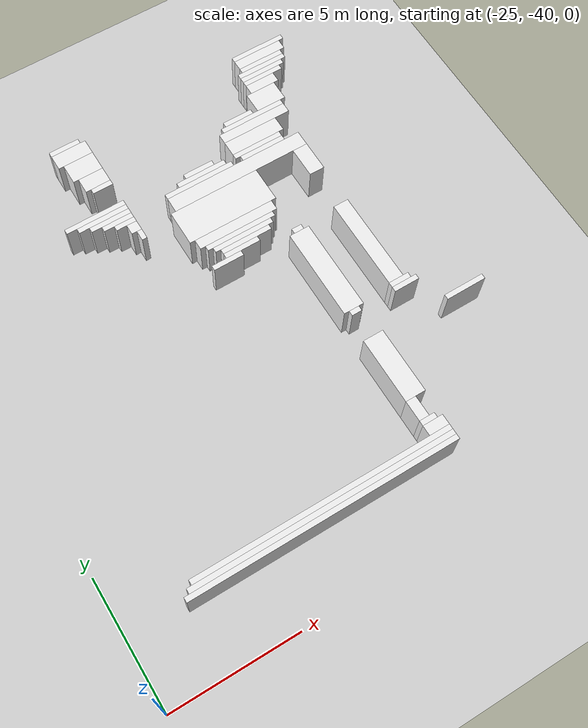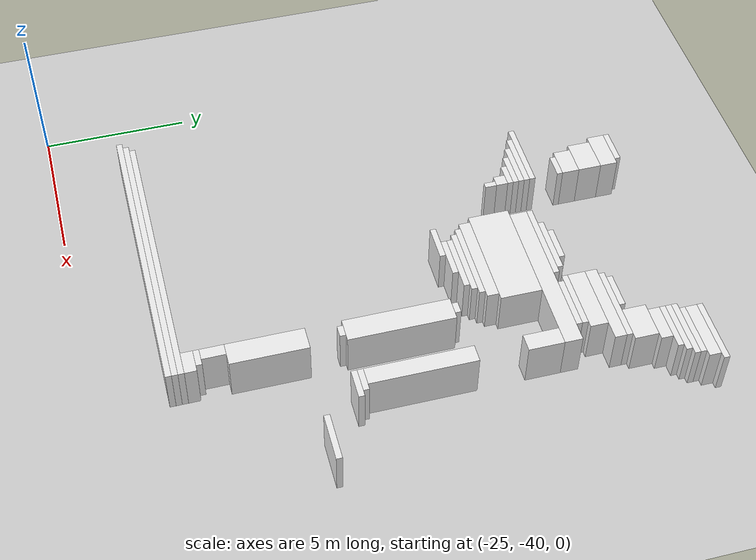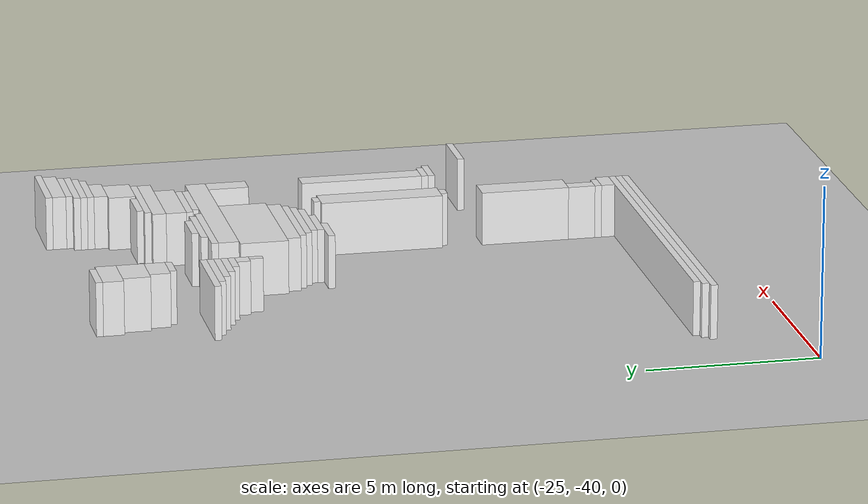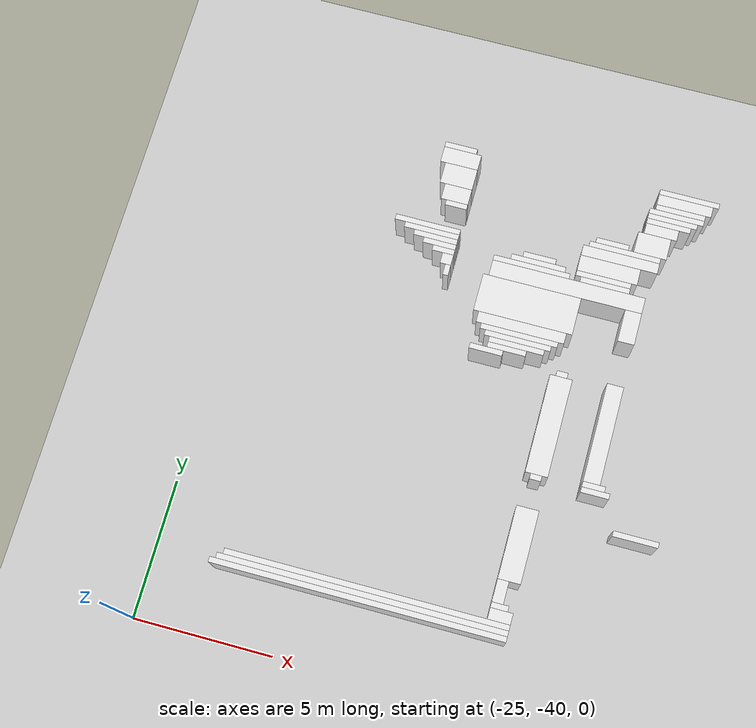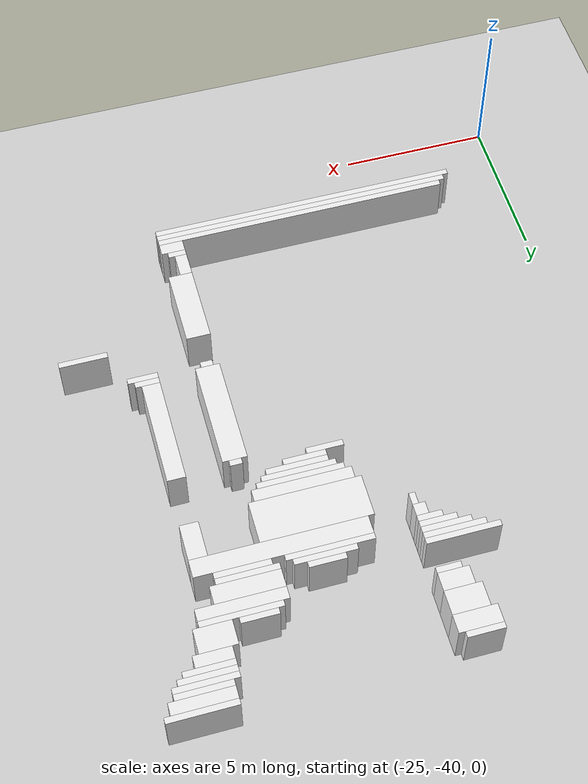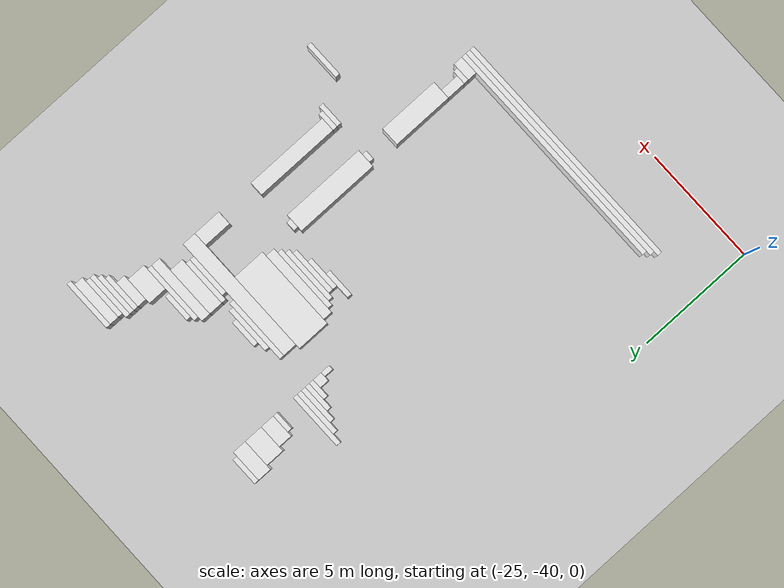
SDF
<sdf version="1.7">
 <world name="default">
  <model name="ground_plane">
   <static>1</static>
   <link name="link">
    <collision name="collision">
     <geometry><plane><normal>0 0 1</normal><size>120 120</size></plane></geometry>
    </collision>
    <visual name="visual">
     <geometry><plane><normal>0 0 1</normal><size>120 120</size></plane></geometry>
     <material>
      <script><uri>file://media/materials/scripts/gazebo.material</uri><name>Gazebo/Grey</name></script>
     </material>
    </visual>
   </link>
  </model>
  <model name="random_complex_02_model">
   <static>1</static>
   <link name="obs_2791">
    <pose>-9.9000 -20.5000 0.8000 0 0 0</pose>
    <collision name="obs_2791_col"><geometry><box><size>2.2000 0.2000 1.6000</size></box></geometry></collision>
    <visual name="obs_2791_vis">
     <geometry><box><size>2.2000 0.2000 1.6000</size></box></geometry>
     <material>
      <script><uri>file://media/materials/scripts/gazebo.material</uri><name>Gazebo/White</name></script>
     </material>
    </visual>
   </link>
   <link name="obs_2797">
    <pose>-18.4000 -20.7000 0.8000 0 0 0</pose>
    <collision name="obs_2797_col"><geometry><box><size>1.2000 0.2000 1.6000</size></box></geometry></collision>
    <visual name="obs_2797_vis">
     <geometry><box><size>1.2000 0.2000 1.6000</size></box></geometry>
     <material>
      <script><uri>file://media/materials/scripts/gazebo.material</uri><name>Gazebo/White</name></script>
     </material>
    </visual>
   </link>
   <link name="obs_2801">
    <pose>-10.0000 -20.8000 0.8000 0 0 0</pose>
    <collision name="obs_2801_col"><geometry><box><size>2.0000 0.4000 1.6000</size></box></geometry></collision>
    <visual name="obs_2801_vis">
     <geometry><box><size>2.0000 0.4000 1.6000</size></box></geometry>
     <material>
      <script><uri>file://media/materials/scripts/gazebo.material</uri><name>Gazebo/White</name></script>
     </material>
    </visual>
   </link>
   <link name="obs_2810">
    <pose>-10.1000 -21.1000 0.8000 0 0 0</pose>
    <collision name="obs_2810_col"><geometry><box><size>1.8000 0.2000 1.6000</size></box></geometry></collision>
    <visual name="obs_2810_vis">
     <geometry><box><size>1.8000 0.2000 1.6000</size></box></geometry>
     <material>
      <script><uri>file://media/materials/scripts/gazebo.material</uri><name>Gazebo/White</name></script>
     </material>
    </visual>
   </link>
   <link name="obs_2813">
    <pose>-18.3000 -21.1000 0.8000 0 0 0</pose>
    <collision name="obs_2813_col"><geometry><box><size>1.4000 0.6000 1.6000</size></box></geometry></collision>
    <visual name="obs_2813_vis">
     <geometry><box><size>1.4000 0.6000 1.6000</size></box></geometry>
     <material>
      <script><uri>file://media/materials/scripts/gazebo.material</uri><name>Gazebo/White</name></script>
     </material>
    </visual>
   </link>
   <link name="obs_2816">
    <pose>-10.2000 -21.3000 0.8000 0 0 0</pose>
    <collision name="obs_2816_col"><geometry><box><size>2.0000 0.2000 1.6000</size></box></geometry></collision>
    <visual name="obs_2816_vis">
     <geometry><box><size>2.0000 0.2000 1.6000</size></box></geometry>
     <material>
      <script><uri>file://media/materials/scripts/gazebo.material</uri><name>Gazebo/White</name></script>
     </material>
    </visual>
   </link>
   <link name="obs_2823">
    <pose>-10.3000 -21.5000 0.8000 0 0 0</pose>
    <collision name="obs_2823_col"><geometry><box><size>1.8000 0.2000 1.6000</size></box></geometry></collision>
    <visual name="obs_2823_vis">
     <geometry><box><size>1.8000 0.2000 1.6000</size></box></geometry>
     <material>
      <script><uri>file://media/materials/scripts/gazebo.material</uri><name>Gazebo/White</name></script>
     </material>
    </visual>
   </link>
   <link name="obs_2830">
    <pose>-10.4000 -21.7000 0.8000 0 0 0</pose>
    <collision name="obs_2830_col"><geometry><box><size>1.6000 0.2000 1.6000</size></box></geometry></collision>
    <visual name="obs_2830_vis">
     <geometry><box><size>1.6000 0.2000 1.6000</size></box></geometry>
     <material>
      <script><uri>file://media/materials/scripts/gazebo.material</uri><name>Gazebo/White</name></script>
     </material>
    </visual>
   </link>
   <link name="obs_2841">
    <pose>-18.2000 -21.8000 0.8000 0 0 0</pose>
    <collision name="obs_2841_col"><geometry><box><size>1.2000 0.8000 1.6000</size></box></geometry></collision>
    <visual name="obs_2841_vis">
     <geometry><box><size>1.2000 0.8000 1.6000</size></box></geometry>
     <material>
      <script><uri>file://media/materials/scripts/gazebo.material</uri><name>Gazebo/White</name></script>
     </material>
    </visual>
   </link>
   <link name="obs_2842">
    <pose>-10.6000 -22.0000 0.8000 0 0 0</pose>
    <collision name="obs_2842_col"><geometry><box><size>1.2000 0.4000 1.6000</size></box></geometry></collision>
    <visual name="obs_2842_vis">
     <geometry><box><size>1.2000 0.4000 1.6000</size></box></geometry>
     <material>
      <script><uri>file://media/materials/scripts/gazebo.material</uri><name>Gazebo/White</name></script>
     </material>
    </visual>
   </link>
   <link name="obs_2857">
    <pose>-18.1000 -22.5000 0.8000 0 0 0</pose>
    <collision name="obs_2857_col"><geometry><box><size>1.0000 0.6000 1.6000</size></box></geometry></collision>
    <visual name="obs_2857_vis">
     <geometry><box><size>1.0000 0.6000 1.6000</size></box></geometry>
     <material>
      <script><uri>file://media/materials/scripts/gazebo.material</uri><name>Gazebo/White</name></script>
     </material>
    </visual>
   </link>
   <link name="obs_2866">
    <pose>-10.8000 -22.6000 0.8000 0 0 0</pose>
    <collision name="obs_2866_col"><geometry><box><size>1.2000 0.8000 1.6000</size></box></geometry></collision>
    <visual name="obs_2866_vis">
     <geometry><box><size>1.2000 0.8000 1.6000</size></box></geometry>
     <material>
      <script><uri>file://media/materials/scripts/gazebo.material</uri><name>Gazebo/White</name></script>
     </material>
    </visual>
   </link>
   <link name="obs_2868">
    <pose>-18.0000 -22.9000 0.8000 0 0 0</pose>
    <collision name="obs_2868_col"><geometry><box><size>0.8000 0.2000 1.6000</size></box></geometry></collision>
    <visual name="obs_2868_vis">
     <geometry><box><size>0.8000 0.2000 1.6000</size></box></geometry>
     <material>
      <script><uri>file://media/materials/scripts/gazebo.material</uri><name>Gazebo/White</name></script>
     </material>
    </visual>
   </link>
   <link name="obs_2869">
    <pose>-12.2000 -22.9000 0.8000 0 0 0</pose>
    <collision name="obs_2869_col"><geometry><box><size>1.2000 0.2000 1.6000</size></box></geometry></collision>
    <visual name="obs_2869_vis">
     <geometry><box><size>1.2000 0.2000 1.6000</size></box></geometry>
     <material>
      <script><uri>file://media/materials/scripts/gazebo.material</uri><name>Gazebo/White</name></script>
     </material>
    </visual>
   </link>
   <link name="obs_2879">
    <pose>-11.7000 -23.1000 0.8000 0 0 0</pose>
    <collision name="obs_2879_col"><geometry><box><size>2.6000 0.2000 1.6000</size></box></geometry></collision>
    <visual name="obs_2879_vis">
     <geometry><box><size>2.6000 0.2000 1.6000</size></box></geometry>
     <material>
      <script><uri>file://media/materials/scripts/gazebo.material</uri><name>Gazebo/White</name></script>
     </material>
    </visual>
   </link>
   <link name="obs_2892">
    <pose>-11.8000 -23.4000 0.8000 0 0 0</pose>
    <collision name="obs_2892_col"><geometry><box><size>2.8000 0.4000 1.6000</size></box></geometry></collision>
    <visual name="obs_2892_vis">
     <geometry><box><size>2.8000 0.4000 1.6000</size></box></geometry>
     <material>
      <script><uri>file://media/materials/scripts/gazebo.material</uri><name>Gazebo/White</name></script>
     </material>
    </visual>
   </link>
   <link name="obs_2905">
    <pose>-18.8000 -23.9000 0.8000 0 0 0</pose>
    <collision name="obs_2905_col"><geometry><box><size>2.4000 0.2000 1.6000</size></box></geometry></collision>
    <visual name="obs_2905_vis">
     <geometry><box><size>2.4000 0.2000 1.6000</size></box></geometry>
     <material>
      <script><uri>file://media/materials/scripts/gazebo.material</uri><name>Gazebo/White</name></script>
     </material>
    </visual>
   </link>
   <link name="obs_2908">
    <pose>-12.1000 -23.9000 0.8000 0 0 0</pose>
    <collision name="obs_2908_col"><geometry><box><size>2.2000 0.6000 1.6000</size></box></geometry></collision>
    <visual name="obs_2908_vis">
     <geometry><box><size>2.2000 0.6000 1.6000</size></box></geometry>
     <material>
      <script><uri>file://media/materials/scripts/gazebo.material</uri><name>Gazebo/White</name></script>
     </material>
    </visual>
   </link>
   <link name="obs_2913">
    <pose>-18.6000 -24.1000 0.8000 0 0 0</pose>
    <collision name="obs_2913_col"><geometry><box><size>2.0000 0.2000 1.6000</size></box></geometry></collision>
    <visual name="obs_2913_vis">
     <geometry><box><size>2.0000 0.2000 1.6000</size></box></geometry>
     <material>
      <script><uri>file://media/materials/scripts/gazebo.material</uri><name>Gazebo/White</name></script>
     </material>
    </visual>
   </link>
   <link name="obs_2914">
    <pose>-14.6000 -24.1000 0.8000 0 0 0</pose>
    <collision name="obs_2914_col"><geometry><box><size>1.2000 0.2000 1.6000</size></box></geometry></collision>
    <visual name="obs_2914_vis">
     <geometry><box><size>1.2000 0.2000 1.6000</size></box></geometry>
     <material>
      <script><uri>file://media/materials/scripts/gazebo.material</uri><name>Gazebo/White</name></script>
     </material>
    </visual>
   </link>
   <link name="obs_2921">
    <pose>-18.4000 -24.3000 0.8000 0 0 0</pose>
    <collision name="obs_2921_col"><geometry><box><size>1.6000 0.2000 1.6000</size></box></geometry></collision>
    <visual name="obs_2921_vis">
     <geometry><box><size>1.6000 0.2000 1.6000</size></box></geometry>
     <material>
      <script><uri>file://media/materials/scripts/gazebo.material</uri><name>Gazebo/White</name></script>
     </material>
    </visual>
   </link>
   <link name="obs_2922">
    <pose>-14.6000 -24.3000 0.8000 0 0 0</pose>
    <collision name="obs_2922_col"><geometry><box><size>2.0000 0.2000 1.6000</size></box></geometry></collision>
    <visual name="obs_2922_vis">
     <geometry><box><size>2.0000 0.2000 1.6000</size></box></geometry>
     <material>
      <script><uri>file://media/materials/scripts/gazebo.material</uri><name>Gazebo/White</name></script>
     </material>
    </visual>
   </link>
   <link name="obs_2923">
    <pose>-12.2000 -24.3000 0.8000 0 0 0</pose>
    <collision name="obs_2923_col"><geometry><box><size>2.0000 0.2000 1.6000</size></box></geometry></collision>
    <visual name="obs_2923_vis">
     <geometry><box><size>2.0000 0.2000 1.6000</size></box></geometry>
     <material>
      <script><uri>file://media/materials/scripts/gazebo.material</uri><name>Gazebo/White</name></script>
     </material>
    </visual>
   </link>
   <link name="obs_2928">
    <pose>-18.2000 -24.5000 0.8000 0 0 0</pose>
    <collision name="obs_2928_col"><geometry><box><size>1.2000 0.2000 1.6000</size></box></geometry></collision>
    <visual name="obs_2928_vis">
     <geometry><box><size>1.2000 0.2000 1.6000</size></box></geometry>
     <material>
      <script><uri>file://media/materials/scripts/gazebo.material</uri><name>Gazebo/White</name></script>
     </material>
    </visual>
   </link>
   <link name="obs_2929">
    <pose>-14.8000 -24.5000 0.8000 0 0 0</pose>
    <collision name="obs_2929_col"><geometry><box><size>2.8000 0.2000 1.6000</size></box></geometry></collision>
    <visual name="obs_2929_vis">
     <geometry><box><size>2.8000 0.2000 1.6000</size></box></geometry>
     <material>
      <script><uri>file://media/materials/scripts/gazebo.material</uri><name>Gazebo/White</name></script>
     </material>
    </visual>
   </link>
   <link name="obs_2930">
    <pose>-12.1000 -24.5000 0.8000 0 0 0</pose>
    <collision name="obs_2930_col"><geometry><box><size>1.8000 0.2000 1.6000</size></box></geometry></collision>
    <visual name="obs_2930_vis">
     <geometry><box><size>1.8000 0.2000 1.6000</size></box></geometry>
     <material>
      <script><uri>file://media/materials/scripts/gazebo.material</uri><name>Gazebo/White</name></script>
     </material>
    </visual>
   </link>
   <link name="obs_2938">
    <pose>-18.0000 -24.7000 0.8000 0 0 0</pose>
    <collision name="obs_2938_col"><geometry><box><size>0.8000 0.2000 1.6000</size></box></geometry></collision>
    <visual name="obs_2938_vis">
     <geometry><box><size>0.8000 0.2000 1.6000</size></box></geometry>
     <material>
      <script><uri>file://media/materials/scripts/gazebo.material</uri><name>Gazebo/White</name></script>
     </material>
    </visual>
   </link>
   <link name="obs_2951">
    <pose>-13.4000 -24.9000 0.8000 0 0 0</pose>
    <collision name="obs_2951_col"><geometry><box><size>5.6000 0.6000 1.6000</size></box></geometry></collision>
    <visual name="obs_2951_vis">
     <geometry><box><size>5.6000 0.6000 1.6000</size></box></geometry>
     <material>
      <script><uri>file://media/materials/scripts/gazebo.material</uri><name>Gazebo/White</name></script>
     </material>
    </visual>
   </link>
   <link name="obs_2952">
    <pose>-17.8000 -25.0000 0.8000 0 0 0</pose>
    <collision name="obs_2952_col"><geometry><box><size>0.4000 0.4000 1.6000</size></box></geometry></collision>
    <visual name="obs_2952_vis">
     <geometry><box><size>0.4000 0.4000 1.6000</size></box></geometry>
     <material>
      <script><uri>file://media/materials/scripts/gazebo.material</uri><name>Gazebo/White</name></script>
     </material>
    </visual>
   </link>
   <link name="obs_2966">
    <pose>-17.7000 -25.4000 0.8000 0 0 0</pose>
    <collision name="obs_2966_col"><geometry><box><size>0.2000 0.4000 1.6000</size></box></geometry></collision>
    <visual name="obs_2966_vis">
     <geometry><box><size>0.2000 0.4000 1.6000</size></box></geometry>
     <material>
      <script><uri>file://media/materials/scripts/gazebo.material</uri><name>Gazebo/White</name></script>
     </material>
    </visual>
   </link>
   <link name="obs_2988">
    <pose>-10.9000 -25.8000 0.8000 0 0 0</pose>
    <collision name="obs_2988_col"><geometry><box><size>0.6000 1.2000 1.6000</size></box></geometry></collision>
    <visual name="obs_2988_vis">
     <geometry><box><size>0.6000 1.2000 1.6000</size></box></geometry>
     <material>
      <script><uri>file://media/materials/scripts/gazebo.material</uri><name>Gazebo/White</name></script>
     </material>
    </visual>
   </link>
   <link name="obs_2995">
    <pose>-14.6000 -25.9000 0.8000 0 0 0</pose>
    <collision name="obs_2995_col"><geometry><box><size>3.6000 1.4000 1.6000</size></box></geometry></collision>
    <visual name="obs_2995_vis">
     <geometry><box><size>3.6000 1.4000 1.6000</size></box></geometry>
     <material>
      <script><uri>file://media/materials/scripts/gazebo.material</uri><name>Gazebo/White</name></script>
     </material>
    </visual>
   </link>
   <link name="obs_3003">
    <pose>-14.6000 -26.8000 0.8000 0 0 0</pose>
    <collision name="obs_3003_col"><geometry><box><size>3.2000 0.4000 1.6000</size></box></geometry></collision>
    <visual name="obs_3003_vis">
     <geometry><box><size>3.2000 0.4000 1.6000</size></box></geometry>
     <material>
      <script><uri>file://media/materials/scripts/gazebo.material</uri><name>Gazebo/White</name></script>
     </material>
    </visual>
   </link>
   <link name="obs_3008">
    <pose>-14.6000 -27.1000 0.8000 0 0 0</pose>
    <collision name="obs_3008_col"><geometry><box><size>2.8000 0.2000 1.6000</size></box></geometry></collision>
    <visual name="obs_3008_vis">
     <geometry><box><size>2.8000 0.2000 1.6000</size></box></geometry>
     <material>
      <script><uri>file://media/materials/scripts/gazebo.material</uri><name>Gazebo/White</name></script>
     </material>
    </visual>
   </link>
   <link name="obs_3014">
    <pose>-14.6000 -27.3000 0.8000 0 0 0</pose>
    <collision name="obs_3014_col"><geometry><box><size>2.4000 0.2000 1.6000</size></box></geometry></collision>
    <visual name="obs_3014_vis">
     <geometry><box><size>2.4000 0.2000 1.6000</size></box></geometry>
     <material>
      <script><uri>file://media/materials/scripts/gazebo.material</uri><name>Gazebo/White</name></script>
     </material>
    </visual>
   </link>
   <link name="obs_3017">
    <pose>-14.6000 -27.5000 0.8000 0 0 0</pose>
    <collision name="obs_3017_col"><geometry><box><size>2.0000 0.2000 1.6000</size></box></geometry></collision>
    <visual name="obs_3017_vis">
     <geometry><box><size>2.0000 0.2000 1.6000</size></box></geometry>
     <material>
      <script><uri>file://media/materials/scripts/gazebo.material</uri><name>Gazebo/White</name></script>
     </material>
    </visual>
   </link>
   <link name="obs_3020">
    <pose>-14.9000 -27.7000 0.8000 0 0 0</pose>
    <collision name="obs_3020_col"><geometry><box><size>1.4000 0.2000 1.6000</size></box></geometry></collision>
    <visual name="obs_3020_vis">
     <geometry><box><size>1.4000 0.2000 1.6000</size></box></geometry>
     <material>
      <script><uri>file://media/materials/scripts/gazebo.material</uri><name>Gazebo/White</name></script>
     </material>
    </visual>
   </link>
   <link name="obs_3024">
    <pose>-15.6000 -27.9000 0.8000 0 0 0</pose>
    <collision name="obs_3024_col"><geometry><box><size>1.2000 0.2000 1.6000</size></box></geometry></collision>
    <visual name="obs_3024_vis">
     <geometry><box><size>1.2000 0.2000 1.6000</size></box></geometry>
     <material>
      <script><uri>file://media/materials/scripts/gazebo.material</uri><name>Gazebo/White</name></script>
     </material>
    </visual>
   </link>
   <link name="obs_3028">
    <pose>-12.8000 -28.1000 0.8000 0 0 0</pose>
    <collision name="obs_3028_col"><geometry><box><size>0.4000 0.2000 1.6000</size></box></geometry></collision>
    <visual name="obs_3028_vis">
     <geometry><box><size>0.4000 0.2000 1.6000</size></box></geometry>
     <material>
      <script><uri>file://media/materials/scripts/gazebo.material</uri><name>Gazebo/White</name></script>
     </material>
    </visual>
   </link>
   <link name="obs_3127">
    <pose>-10.9000 -29.8000 0.8000 0 0 0</pose>
    <collision name="obs_3127_col"><geometry><box><size>0.6000 3.6000 1.6000</size></box></geometry></collision>
    <visual name="obs_3127_vis">
     <geometry><box><size>0.6000 3.6000 1.6000</size></box></geometry>
     <material>
      <script><uri>file://media/materials/scripts/gazebo.material</uri><name>Gazebo/White</name></script>
     </material>
    </visual>
   </link>
   <link name="obs_3133">
    <pose>-12.8000 -30.0000 0.8000 0 0 0</pose>
    <collision name="obs_3133_col"><geometry><box><size>0.8000 3.6000 1.6000</size></box></geometry></collision>
    <visual name="obs_3133_vis">
     <geometry><box><size>0.8000 3.6000 1.6000</size></box></geometry>
     <material>
      <script><uri>file://media/materials/scripts/gazebo.material</uri><name>Gazebo/White</name></script>
     </material>
    </visual>
   </link>
   <link name="obs_3135">
    <pose>-10.8000 -31.7000 0.8000 0 0 0</pose>
    <collision name="obs_3135_col"><geometry><box><size>0.8000 0.2000 1.6000</size></box></geometry></collision>
    <visual name="obs_3135_vis">
     <geometry><box><size>0.8000 0.2000 1.6000</size></box></geometry>
     <material>
      <script><uri>file://media/materials/scripts/gazebo.material</uri><name>Gazebo/White</name></script>
     </material>
    </visual>
   </link>
   <link name="obs_3145">
    <pose>-12.8000 -31.9000 0.8000 0 0 0</pose>
    <collision name="obs_3145_col"><geometry><box><size>0.4000 0.2000 1.6000</size></box></geometry></collision>
    <visual name="obs_3145_vis">
     <geometry><box><size>0.4000 0.2000 1.6000</size></box></geometry>
     <material>
      <script><uri>file://media/materials/scripts/gazebo.material</uri><name>Gazebo/White</name></script>
     </material>
    </visual>
   </link>
   <link name="obs_3146">
    <pose>-10.7000 -31.9000 0.8000 0 0 0</pose>
    <collision name="obs_3146_col"><geometry><box><size>1.0000 0.2000 1.6000</size></box></geometry></collision>
    <visual name="obs_3146_vis">
     <geometry><box><size>1.0000 0.2000 1.6000</size></box></geometry>
     <material>
      <script><uri>file://media/materials/scripts/gazebo.material</uri><name>Gazebo/White</name></script>
     </material>
    </visual>
   </link>
   <link name="obs_3168">
    <pose>-9.0000 -33.1000 0.8000 0 0 0</pose>
    <collision name="obs_3168_col"><geometry><box><size>1.6000 0.2000 1.6000</size></box></geometry></collision>
    <visual name="obs_3168_vis">
     <geometry><box><size>1.6000 0.2000 1.6000</size></box></geometry>
     <material>
      <script><uri>file://media/materials/scripts/gazebo.material</uri><name>Gazebo/White</name></script>
     </material>
    </visual>
   </link>
   <link name="obs_3200">
    <pose>-12.8000 -34.3000 0.8000 0 0 0</pose>
    <collision name="obs_3200_col"><geometry><box><size>0.8000 2.6000 1.6000</size></box></geometry></collision>
    <visual name="obs_3200_vis">
     <geometry><box><size>0.8000 2.6000 1.6000</size></box></geometry>
     <material>
      <script><uri>file://media/materials/scripts/gazebo.material</uri><name>Gazebo/White</name></script>
     </material>
    </visual>
   </link>
   <link name="obs_3210">
    <pose>-13.0000 -36.0000 0.8000 0 0 0</pose>
    <collision name="obs_3210_col"><geometry><box><size>0.4000 0.8000 1.6000</size></box></geometry></collision>
    <visual name="obs_3210_vis">
     <geometry><box><size>0.4000 0.8000 1.6000</size></box></geometry>
     <material>
      <script><uri>file://media/materials/scripts/gazebo.material</uri><name>Gazebo/White</name></script>
     </material>
    </visual>
   </link>
   <link name="obs_3213">
    <pose>-12.9000 -36.5000 0.8000 0 0 0</pose>
    <collision name="obs_3213_col"><geometry><box><size>0.6000 0.2000 1.6000</size></box></geometry></collision>
    <visual name="obs_3213_vis">
     <geometry><box><size>0.6000 0.2000 1.6000</size></box></geometry>
     <material>
      <script><uri>file://media/materials/scripts/gazebo.material</uri><name>Gazebo/White</name></script>
     </material>
    </visual>
   </link>
   <link name="obs_3222">
    <pose>-12.8000 -36.8000 0.8000 0 0 0</pose>
    <collision name="obs_3222_col"><geometry><box><size>0.8000 0.4000 1.6000</size></box></geometry></collision>
    <visual name="obs_3222_vis">
     <geometry><box><size>0.8000 0.4000 1.6000</size></box></geometry>
     <material>
      <script><uri>file://media/materials/scripts/gazebo.material</uri><name>Gazebo/White</name></script>
     </material>
    </visual>
   </link>
   <link name="obs_3229">
    <pose>-17.4000 -37.1000 0.8000 0 0 0</pose>
    <collision name="obs_3229_col"><geometry><box><size>10.0000 0.2000 1.6000</size></box></geometry></collision>
    <visual name="obs_3229_vis">
     <geometry><box><size>10.0000 0.2000 1.6000</size></box></geometry>
     <material>
      <script><uri>file://media/materials/scripts/gazebo.material</uri><name>Gazebo/White</name></script>
     </material>
    </visual>
   </link>
   <link name="obs_3234">
    <pose>-17.5000 -37.3000 0.8000 0 0 0</pose>
    <collision name="obs_3234_col"><geometry><box><size>10.2000 0.2000 1.6000</size></box></geometry></collision>
    <visual name="obs_3234_vis">
     <geometry><box><size>10.2000 0.2000 1.6000</size></box></geometry>
     <material>
      <script><uri>file://media/materials/scripts/gazebo.material</uri><name>Gazebo/White</name></script>
     </material>
    </visual>
   </link>
   <link name="obs_3239">
    <pose>-17.6000 -37.5000 0.8000 0 0 0</pose>
    <collision name="obs_3239_col"><geometry><box><size>10.4000 0.2000 1.6000</size></box></geometry></collision>
    <visual name="obs_3239_vis">
     <geometry><box><size>10.4000 0.2000 1.6000</size></box></geometry>
     <material>
      <script><uri>file://media/materials/scripts/gazebo.material</uri><name>Gazebo/White</name></script>
     </material>
    </visual>
   </link>
  </model>
 </world>
</sdf>
